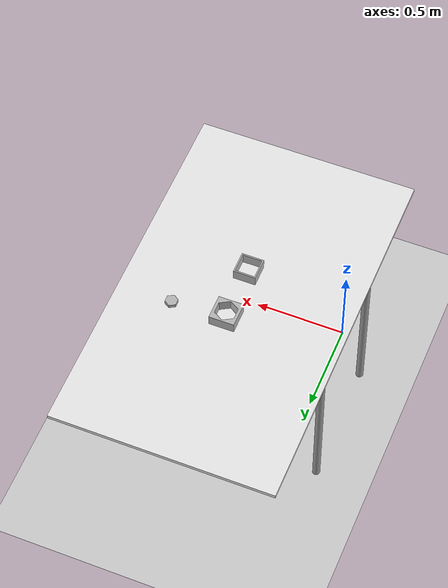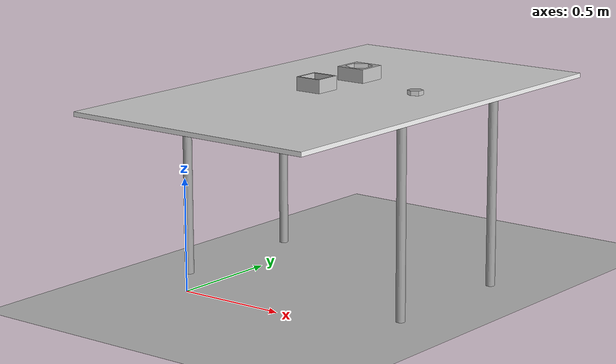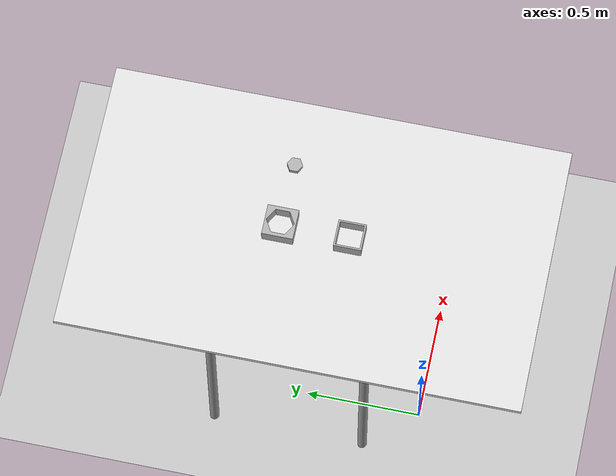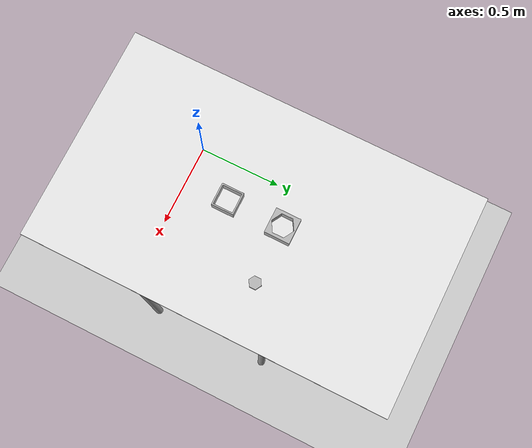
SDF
<sdf version="1.4">
 <world name="default">
  <physics type="ode">
   <gravity>0 0 -9.81</gravity>
   <ode>
    <solver><type>quick</type><iters>20</iters><sor>1.0</sor></solver>
    <constraints>
     <cfm>0.0</cfm>
     <erp>0.2</erp>
     <contact_max_correcting_vel>100.0</contact_max_correcting_vel>
     <contact_surface_layer>0.0</contact_surface_layer>
    </constraints>
   </ode>
   <real_time_update_rate>1000</real_time_update_rate>
   <max_step_size>0.001</max_step_size>
  </physics>
  <light type="directional" name="light1">
   <pose>2 0 10 0 0 0</pose>
   <diffuse>1.0 1.0 1.0 1</diffuse>
   <specular>0.1 0.1 0.1 1</specular>
   <attenuation>
    <range>20</range>
    <constant>0.9</constant>
    <linear>0.01</linear>
    <quadratic>0.001</quadratic>
   </attenuation>
   <direction>0.2 0.0 -1.0</direction>
  </light>
  <include><uri>model://ground_plane</uri></include>
  <include><uri>model://table_0m8</uri><name>table</name><pose>0.4 0.55 0.01 0 0 0</pose></include>
  <include><uri>model://4hole</uri><pose>0.4 0.4 0.9 0 0 0</pose></include>
  <include><uri>model://6hole</uri><pose>0.4 0.7 0.9 0 0 1.5708</pose></include>
  <include><uri>model://6cylinder</uri><pose>0.7 0.7 0.83 0 0 0</pose></include>
 </world>
</sdf>

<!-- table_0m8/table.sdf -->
<sdf version='1.4'>
<model name='table'>
      <static>1</static>
      <link name='link'>
        <collision name='surface'>
          <pose>0.000000 0.000000 0.820000 0.000000 0.000000 0.000000</pose>
          <geometry>
            <box>
              <size>1.200000 2.000000 0.020000</size>
            </box>
          </geometry>
          <surface>
            <bounce/>
            <friction>
              <ode/>
            </friction>
            <contact>
              <ode/>
            </contact>
          </surface>
        </collision>
        <visual name='visual1'>
          <pose>0.000000 0.000000 0.820000 0.000000 0.000000 0.000000</pose>
          <geometry>
            <box>
              <size>1.200000 2.000000 0.020000</size>
            </box>
          </geometry>
          <material>
            <script>
              <uri>file://media/materials/scripts/gazebo.material</uri>
              <name>Gazebo/white</name>
            </script>
          </material>
        </visual>
        <collision name='front_left_leg'>
          <pose>0.580000 0.330000 0.400000 0.000000 0.000000 0.000000</pose>
          <geometry>
            <cylinder>
              <radius>0.020000</radius>
              <length>0.820000</length>
            </cylinder>
          </geometry>
          <surface>
            <bounce/>
            <friction>
              <ode/>
            </friction>
            <contact>
              <ode/>
            </contact>
          </surface>
        </collision>
        <visual name='front_left_leg'>
          <pose>0.580000 0.330000 0.400000 0.000000 0.000000 0.000000</pose>
          <geometry>
            <cylinder>
              <radius>0.020000</radius>
              <length>0.820000</length>
            </cylinder>
          </geometry>
          <material>
            <script>
              <uri>file://media/materials/scripts/gazebo.material</uri>
              <name>Gazebo/Grey</name>
            </script>
          </material>
        </visual>
        <collision name='front_right_leg'>
          <pose>0.580000 -0.330000 0.400000 0.000000 0.000000 0.000000</pose>
          <geometry>
            <cylinder>
              <radius>0.020000</radius>
              <length>0.820000</length>
            </cylinder>
          </geometry>
          <surface>
            <bounce/>
            <friction>
              <ode/>
            </friction>
            <contact>
              <ode/>
            </contact>
          </surface>
        </collision>
        <visual name='front_right_leg'>
          <pose>0.580000 -0.330000 0.400000 0.000000 0.000000 0.000000</pose>
          <geometry>
            <cylinder>
              <radius>0.020000</radius>
              <length>0.820000</length>
            </cylinder>
          </geometry>
          <material>
            <script>
              <uri>file://media/materials/scripts/gazebo.material</uri>
              <name>Gazebo/Grey</name>
            </script>
          </material>
        </visual>
        <collision name='back_right_leg'>
          <pose>-0.580000 -0.330000 0.400000 0.000000 0.000000 0.000000</pose>
          <geometry>
            <cylinder>
              <radius>0.020000</radius>
              <length>0.820000</length>
            </cylinder>
          </geometry>
          <surface>
            <bounce/>
            <friction>
              <ode/>
            </friction>
            <contact>
              <ode/>
            </contact>
          </surface>
        </collision>
        <visual name='back_right_leg'>
          <pose>-0.580000 -0.330000 0.400000 0.000000 0.000000 0.000000</pose>
          <geometry>
            <cylinder>
              <radius>0.020000</radius>
              <length>0.820000</length>
            </cylinder>
          </geometry>
          <material>
            <script>
              <uri>file://media/materials/scripts/gazebo.material</uri>
              <name>Gazebo/Grey</name>
            </script>
          </material>
        </visual>
        <collision name='back_left_leg'>
          <pose>-0.580000 0.330000 0.400000 0.000000 0.000000 0.000000</pose>
          <geometry>
            <cylinder>
              <radius>0.020000</radius>
              <length>0.820000</length>
            </cylinder>
          </geometry>
          <surface>
            <bounce/>
            <friction>
              <ode/>
            </friction>
            <contact>
              <ode/>
            </contact>
          </surface>
        </collision>
        <visual name='back_left_leg'>
          <pose>-0.580000 0.330000 0.400000 0.000000 0.000000 0.000000</pose>
          <geometry>
            <cylinder>
              <radius>0.020000</radius>
              <length>0.820000</length>
            </cylinder>
          </geometry>
          <material>
            <script>
              <uri>file://media/materials/scripts/gazebo.material</uri>
              <name>Gazebo/Grey</name>
            </script>
          </material>
        </visual>
        <velocity_decay>
          <linear>0.000000</linear>
          <angular>0.000000</angular>
        </velocity_decay>
        <self_collide>0</self_collide>
        <kinematic>0</kinematic>
        <gravity>1</gravity>
      </link>
    </model>
</sdf>

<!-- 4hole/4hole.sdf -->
<sdf version='1.4'>
  <model name="4hole">
      <static>0</static>
      <link name='link'>
        <inertial>
          <mass>0.25</mass>
          <inertia>
            <ixx>0.000041667</ixx>
            <ixy>0.000000</ixy>
            <ixz>0.000000</ixz>
            <iyy>0.000041667</iyy>
            <iyz>0.000000</iyz>
            <izz>0.000041667</izz>
          </inertia>
        </inertial>
        <visual name='visual'>
          <geometry>
            <mesh>
              <uri>model://4hole/meshes/4hole.dae</uri>
	          <scale> 1.5 1.5 1 </scale>
            </mesh>
          </geometry>
        </visual>

        <collision name='collision'>
          <geometry>
            <mesh>
              <uri>model://4hole/meshes/4hole.dae</uri>
	          <scale> 1.5 1.5 1 </scale>
            </mesh>
          </geometry>
          <surface>
            <friction>
              <ode>
                <mu>30.0</mu>
                <mu2>30.0</mu2>
              </ode>
            </friction>
            <contact>
              <ode>
                <kp>1000000.0</kp>
                <kd>100.0</kd>
                <max_vel>1.0</max_vel>
                <min_depth>0.0025</min_depth>
              </ode>
            </contact>
          </surface>
        </collision>
        <velocity_decay>
          <linear>0.000000</linear>
          <angular>0.000000</angular>
        </velocity_decay>
        <self_collide>0</self_collide>
        <kinematic>0</kinematic>
        <gravity>1</gravity>
      </link>
  </model>
</sdf>

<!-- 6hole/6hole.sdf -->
<sdf version='1.4'>
  <model name="6hole">
      <static>0</static>
      <link name='link'>
        <inertial>
          <mass>0.25</mass>
          <inertia>
            <ixx>0.000041667</ixx>
            <ixy>0.000000</ixy>
            <ixz>0.000000</ixz>
            <iyy>0.000041667</iyy>
            <iyz>0.000000</iyz>
            <izz>0.000041667</izz>
          </inertia>
        </inertial>
        <visual name='visual'>
          <geometry>
            <mesh>
              <uri>model://6hole/meshes/6hole.dae</uri>
	          <scale> 1.5 1.5 1 </scale>
            </mesh>
          </geometry>
        </visual>

        <collision name='collision'>
          <geometry>
            <mesh>
              <uri>model://6hole/meshes/6hole.dae</uri>
	          <scale> 1.5 1.5 1 </scale>
            </mesh>
          </geometry>
          <surface>
            <friction>
              <ode>
                <mu>30.0</mu>
                <mu2>30.0</mu2>
              </ode>
            </friction>
            <contact>
              <ode>
                <kp>1000000.0</kp>
                <kd>100.0</kd>
                <max_vel>1.0</max_vel>
                <min_depth>0.0025</min_depth>
              </ode>
            </contact>
          </surface>
        </collision>
        <velocity_decay>
          <linear>0.000000</linear>
          <angular>0.000000</angular>
        </velocity_decay>
        <self_collide>0</self_collide>
        <kinematic>0</kinematic>
        <gravity>1</gravity>
      </link>
  </model>
</sdf>

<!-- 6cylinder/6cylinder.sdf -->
<sdf version='1.4'>
  <model name="6cylinder">
      <static>0</static>
      <link name='link'>
        <inertial>
          <mass>0.25</mass>
          <inertia>
            <ixx>0.000041667</ixx>
            <ixy>0.000000</ixy>
            <ixz>0.000000</ixz>
            <iyy>0.000041667</iyy>
            <iyz>0.000000</iyz>
            <izz>0.000041667</izz>
          </inertia>
        </inertial>
        <visual name='visual'>
          <geometry>
          <mesh>
            <uri>model://6cylinder/meshes/6cylinder.dae</uri>
	    <scale> 1 1 1 </scale>
          </mesh>
          </geometry>
        </visual>
        <collision name='collision'>
          <geometry>
            <box>
              <size>0.06 0.06 0.06</size>
            </box>
          </geometry>
          <surface>
            <friction>
              <ode>
                <mu>30.0</mu>
                <mu2>30.0</mu2>
              </ode>
            </friction>
            <contact>
              <ode>
                <kp>1000000.0</kp>
                <kd>100.0</kd>
                <max_vel>1.0</max_vel>
                <min_depth>0.0025</min_depth>
              </ode>
            </contact>
          </surface>
        </collision>
        <velocity_decay>
          <linear>0.000000</linear>
          <angular>0.000000</angular>
        </velocity_decay>
        <self_collide>0</self_collide>
        <kinematic>0</kinematic>
        <gravity>1</gravity>
      </link>
  </model>
</sdf>
